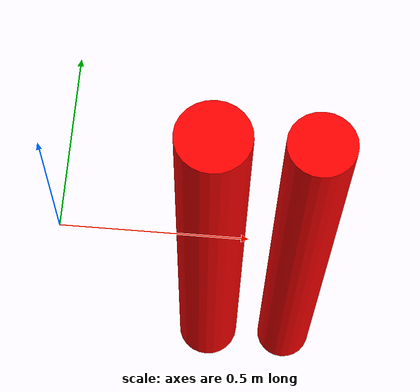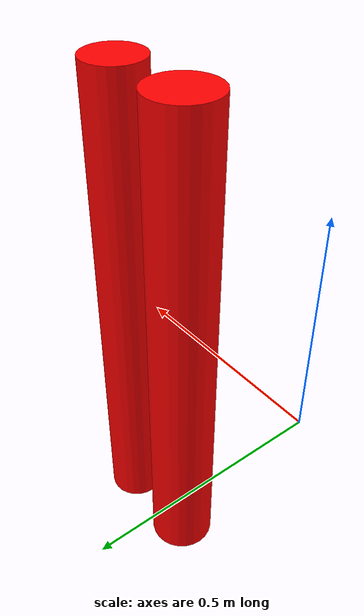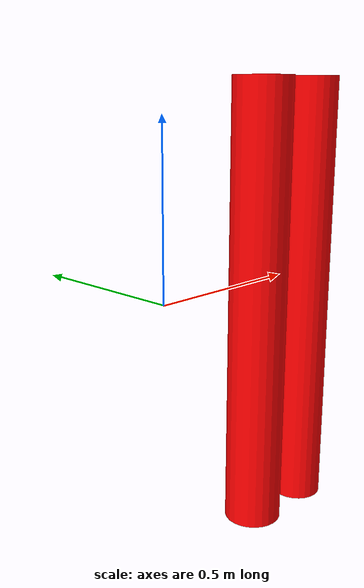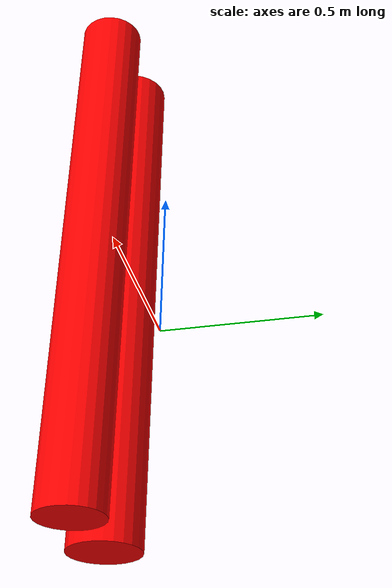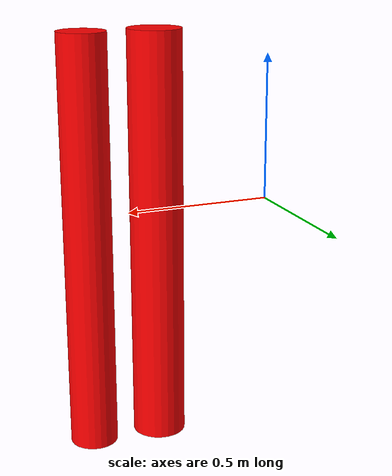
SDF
<?xml version="1.0" ?>
<sdf version="1.7">
  <model name="hybrid_obstacles">
    <static>true</static>
    <link name="obstacles_link">
      <collision name="pillar_02_collision">
        <pose>0.400000 0.000000 -0.100000 0 0 0</pose>
        <geometry>
          <cylinder>
            <radius>0.090000</radius>
            <length>1.400000</length>
          </cylinder>
        </geometry>
      </collision>
      <visual name="pillar_02_visual">
        <pose>0.400000 0.000000 -0.100000 0 0 0</pose>
        <geometry>
          <cylinder>
            <radius>0.090000</radius>
            <length>1.400000</length>
          </cylinder>
        </geometry>
        <material>
          <ambient>1.000 0.000 0.000 1.000</ambient>
          <diffuse>1.000 0.000 0.000 1.000</diffuse>
        </material>
      </visual>
      <collision name="pillar_03_collision">
        <pose>0.640000 0.000000 -0.100000 0 0 0</pose>
        <geometry>
          <cylinder>
            <radius>0.080000</radius>
            <length>1.400000</length>
          </cylinder>
        </geometry>
      </collision>
      <visual name="pillar_03_visual">
        <pose>0.640000 0.000000 -0.100000 0 0 0</pose>
        <geometry>
          <cylinder>
            <radius>0.080000</radius>
            <length>1.400000</length>
          </cylinder>
        </geometry>
        <material>
          <ambient>1.000 0.000 0.000 1.000</ambient>
          <diffuse>1.000 0.000 0.000 1.000</diffuse>
        </material>
      </visual>
    </link>
  </model>
</sdf>
